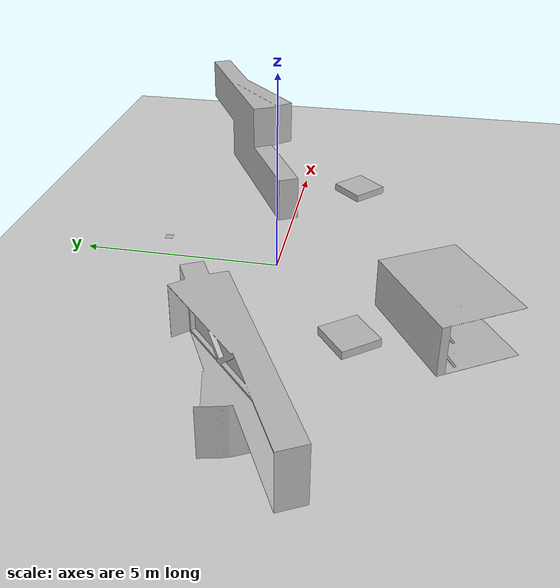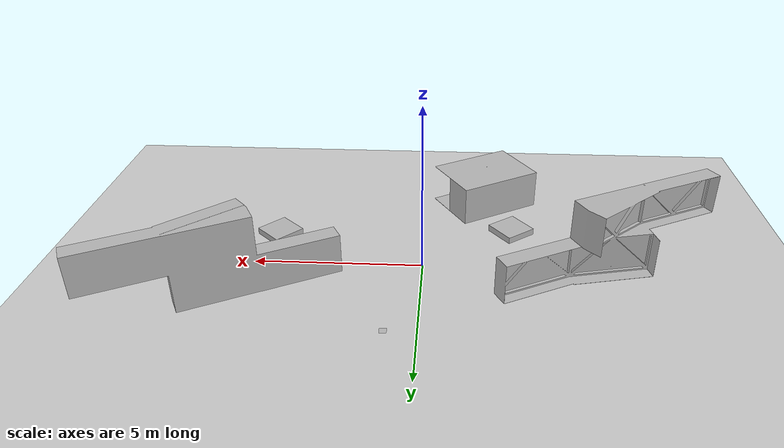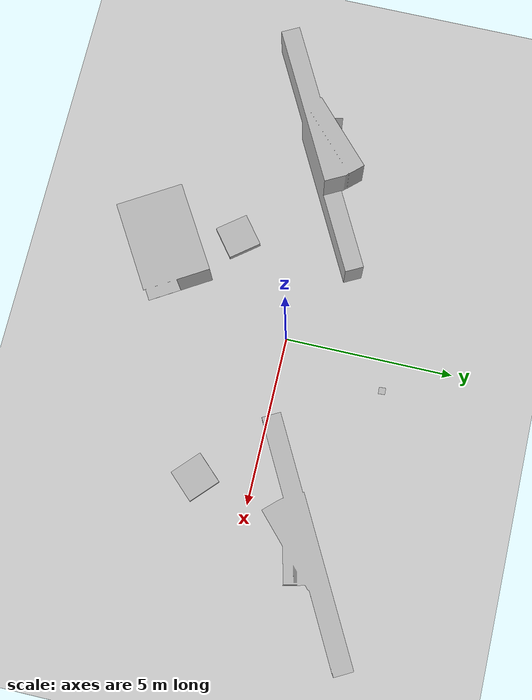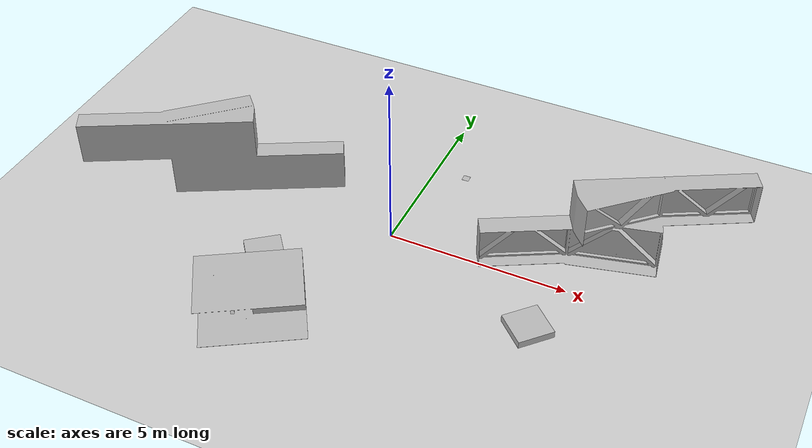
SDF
<sdf version="1.6">
 <world name="field_world">
  <model name="ground_plane">
   <static>true</static>
   <link name="link">
    <collision name="collision">
     <geometry><plane><normal>0 0 1</normal><size>100.0 100.0</size></plane></geometry>
     <surface><friction><ode><mu>1.0</mu><mu2>1.0</mu2></ode></friction></surface>
    </collision>
    <visual name="visual">
     <geometry><plane><normal>0 0 1</normal><size>100.0 100.0</size></plane></geometry>
     <cast_shadows>false</cast_shadows>
     <material>
      <script><uri>file://media/materials/scripts/gazebo.material</uri><name>Gazebo/Grey</name></script>
      <ambient>0.55 0.55 0.55 1</ambient>
      <diffuse>0.55 0.55 0.55 1</diffuse>
      <specular>0.0 0.0 0.0 1</specular>
      <emissive>0.0 0.0 0.0 1</emissive>
     </material>
    </visual>
   </link>
  </model>
  <include><uri>model://sun</uri></include>
  <include>
   <uri>model://stairs_30deg_4deb</uri>
   <name>stairs_30deg_4deb_02</name>
   <pose>-3.605 -3.975 0.000 0 0 -2.595340</pose>
  </include>
  <include>
   <uri>model://1.4explosive</uri>
   <name>1.4explosive_05</name>
   <pose>0.893 3.094 0.000 0 0 1.626135</pose>
  </include>
  <include>
   <uri>model://20cmstep</uri>
   <name>20cmstep_07</name>
   <pose>4.572 -1.634 0.000 0 0 -0.754439</pose>
  </include>
  <include>
   <uri>model://krail_slope_20cm</uri>
   <name>krail_slope_20cm_09</name>
   <pose>2.297 0.362 0.000 0 0 -2.646476</pose>
  </include>
  <include>
   <uri>model://krail_slope_10cm</uri>
   <name>krail_slope_10cm_10</name>
   <pose>-2.068 1.286 0.000 0 0 0.486018</pose>
  </include>
  <include>
   <uri>model://20cmstep</uri>
   <name>20cmstep_11</name>
   <pose>-2.721 -2.106 0.000 0 0 2.232527</pose>
  </include>
 </world>
</sdf>

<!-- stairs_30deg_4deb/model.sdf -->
<sdf version="1.6">
  <model name="stairs_30deg_4deb">
    <static>true</static>
    <pose>-1 0 0 1.5708 0 0</pose>
    <link name="link">
      <collision name="collision">
        <geometry>
          <mesh>
            <scale>0.01 0.01 0.01</scale>
            <uri>model://stairs_30deg_4deb/Stairs_30deg_4deb.dae</uri>
          </mesh>
        </geometry>
        <surface>
          <friction>
            <ode>
              <mu>100</mu>
              <mu2>50</mu2>
            </ode>
          </friction>
        </surface>
      </collision>
      <visual name="visual">
        <geometry>
          <mesh>
            <scale>0.01 0.01 0.01</scale>
            <uri>model://stairs_30deg_4deb/Stairs_30deg_4deb.dae</uri>
          </mesh>
        </geometry>
      </visual>
    </link>
  </model>
</sdf>

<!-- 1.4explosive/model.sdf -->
<sdf version="1.6">
  <model name="1.4explosive">
    <static>true</static>
    <pose>-1 0 0 1.5708 0 0</pose>
    <link name="link">
      <collision name="collision">
        <geometry>
          <mesh>
            <scale>1 1 1</scale>
            <uri>model://1.4explosive/1.4explosive_1.dae</uri>
          </mesh>
        </geometry>
        <surface>
          <friction>
            <ode>
              <mu>1.2</mu>
              <mu2>1.2</mu2>
            </ode>
          </friction>
        </surface>
      </collision>
      <visual name="visual">
        <geometry>
          <mesh>
            <scale>1 1 1</scale>
            <uri>model://1.4explosive/1.4explosive_1.dae</uri>
          </mesh>
        </geometry>
      </visual>
    </link>
  </model>
</sdf>

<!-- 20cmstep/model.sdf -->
<sdf version="1.6">
  <model name="20cmstep">
    <static>true</static>
    <pose>0 0 0 0 0 0</pose>
    <link name="link">
      <collision name="collision">
        <geometry>
          <mesh>
            <scale>0.5 0.5 0.5</scale>
            <uri>model://20cmstep/20cmstep.stl</uri>
          </mesh>
        </geometry>
        <surface>
          <friction>
            <ode>
              <mu>100</mu>
              <mu2>50</mu2>
            </ode>
          </friction>
        </surface>
      </collision>
      <visual name="visual">
        <geometry>
          <mesh>
            <scale>0.5 0.5 0.5</scale>
            <uri>model://20cmstep/20cmstep.stl</uri>
          </mesh>
        </geometry>
      </visual>
    </link>
  </model>
</sdf>

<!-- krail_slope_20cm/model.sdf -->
<sdf version="1.6">
  <model name="krail_slope_20cm">
    <static>true</static>
    <pose>-1 0 0 1.5708 0 0</pose>
    <link name="link">
      <collision name="collision">
        <geometry>
          <mesh>
            <scale>0.01 0.01 0.01</scale>
            <uri>model://krail_slope_20cm/KRail_slope_20cm.stl</uri>
          </mesh>
        </geometry>
        <surface>
          <friction>
            <ode>
              <mu>100</mu>
              <mu2>50</mu2>
            </ode>
          </friction>
        </surface>
      </collision>
      <visual name="visual">
        <geometry>
          <mesh>
            <scale>0.01 0.01 0.01</scale>
            <uri>model://krail_slope_20cm/KRail_slope_20cm.stl</uri>
          </mesh>
        </geometry>
      </visual>
    </link>
  </model>
</sdf>

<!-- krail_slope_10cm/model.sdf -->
<sdf version="1.6">
  <model name="krail_slope_10cm">
    <static>true</static>
    <pose>-1 0 0 1.5708 0 0</pose>
    <link name="link">
      <collision name="collision">
        <geometry>
          <mesh>
            <scale>0.01 0.01 0.01</scale>
            <uri>model://krail_slope_10cm/KRail_slope_10cm.dae</uri>
          </mesh>
        </geometry>
        <surface>
          <friction>
            <ode>
              <mu>100</mu>
              <mu2>50</mu2>
            </ode>
          </friction>
        </surface>
      </collision>
      <visual name="visual">
        <geometry>
          <mesh>
            <scale>0.01 0.01 0.01</scale>
            <uri>model://krail_slope_10cm/KRail_slope_10cm.dae</uri>
          </mesh>
        </geometry>
      </visual>
    </link>
  </model>
</sdf>
